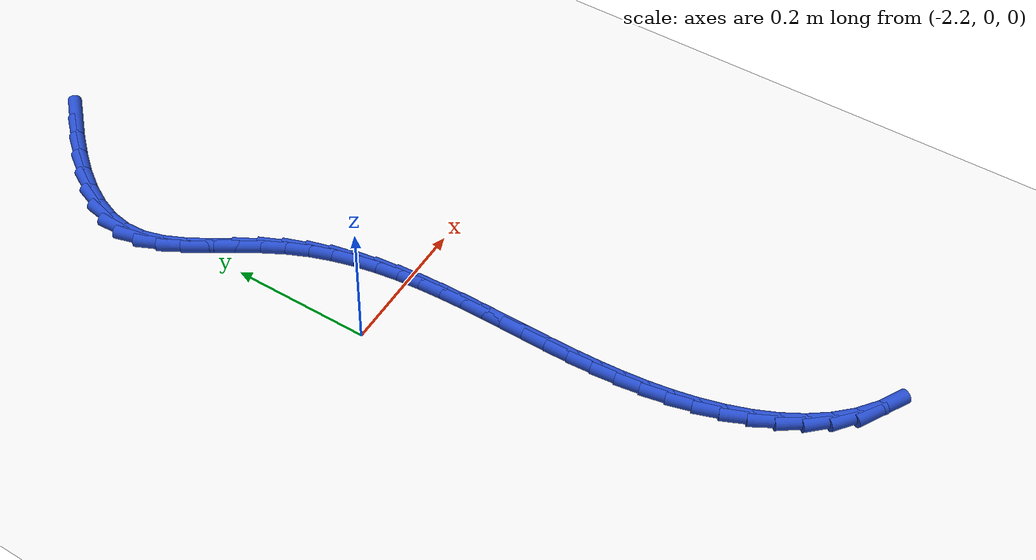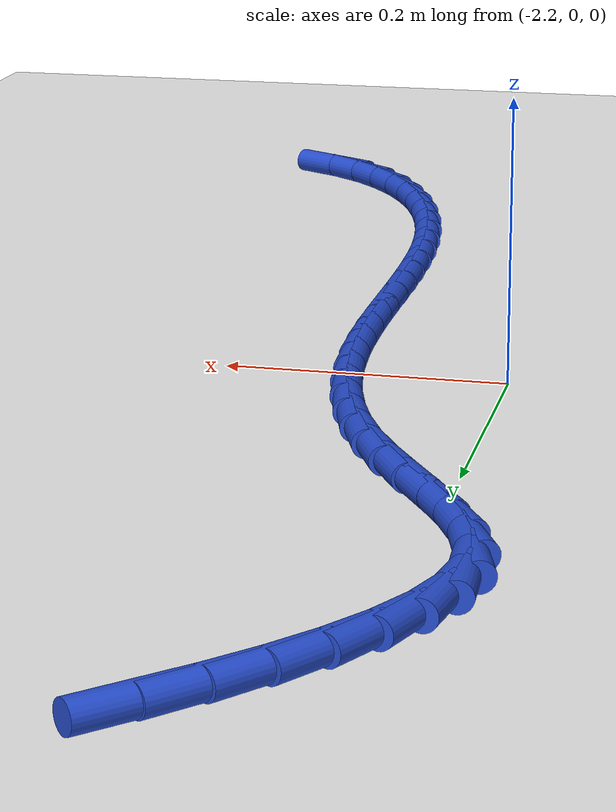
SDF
<sdf version="1.6">
 <world name="default">
  <model name="ground_plane">
   <static>1</static>
   <link name="link">
    <collision name="collision">
     <geometry><plane><normal>0 0 1</normal><size>100 100</size></plane></geometry>
     <surface><friction><ode><mu>100</mu><mu2>50</mu2></ode></friction></surface>
    </collision>
    <visual name="visual">
     <cast_shadows>0</cast_shadows>
     <geometry><plane><normal>0 0 1</normal><size>100 100</size></plane></geometry>
     <material>
      <script><uri>file://media/materials/scripts/gazebo.material</uri><name>Gazebo/WhiteGlow</name></script>
     </material>
    </visual>
   </link>
  </model>
  <model name="line">
   <link name="link_101">
    <pose>-2.10412547914269 0.5753928856501577 0.01 0 1.57 0.7786697946450344</pose>
    <collision name="collision">
     <geometry><cylinder><radius>0.01</radius><length>0.08</length></cylinder></geometry>
    </collision>
    <visual name="visual">
     <material>
      <script><name>Gazebo/Blue</name><uri>file://media/materials/scripts/gazebo.material</uri></script>
     </material>
     <geometry><cylinder><radius>0.01</radius><length>0.08</length></cylinder></geometry>
    </visual>
   </link>
   <link name="link_102">
    <pose>-2.1310854671356485 0.5487932718464961 0.01 0 1.57 0.8250641519956913</pose>
    <collision name="collision">
     <geometry><cylinder><radius>0.01</radius><length>0.08</length></cylinder></geometry>
    </collision>
    <visual name="visual">
     <material>
      <script><name>Gazebo/Blue</name><uri>file://media/materials/scripts/gazebo.material</uri></script>
     </material>
     <geometry><cylinder><radius>0.01</radius><length>0.08</length></cylinder></geometry>
    </visual>
   </link>
   <link name="link_103">
    <pose>-2.156544231815804 0.5212302415238946 0.01 0 1.57 0.886983211156099</pose>
    <collision name="collision">
     <geometry><cylinder><radius>0.01</radius><length>0.08</length></cylinder></geometry>
    </collision>
    <visual name="visual">
     <material>
      <script><name>Gazebo/Blue</name><uri>file://media/materials/scripts/gazebo.material</uri></script>
     </material>
     <geometry><cylinder><radius>0.01</radius><length>0.08</length></cylinder></geometry>
    </visual>
   </link>
   <link name="link_104">
    <pose>-2.179644463284014 0.49288596628811304 0.01 0 1.57 0.9688413552433839</pose>
    <collision name="collision">
     <geometry><cylinder><radius>0.01</radius><length>0.08</length></cylinder></geometry>
    </collision>
    <visual name="visual">
     <material>
      <script><name>Gazebo/Blue</name><uri>file://media/materials/scripts/gazebo.material</uri></script>
     </material>
     <geometry><cylinder><radius>0.01</radius><length>0.08</length></cylinder></geometry>
    </visual>
   </link>
   <link name="link_105">
    <pose>-2.1995288516411353 0.46394261774491213 0.01 0 1.57 1.076805588101793</pose>
    <collision name="collision">
     <geometry><cylinder><radius>0.01</radius><length>0.08</length></cylinder></geometry>
    </collision>
    <visual name="visual">
     <material>
      <script><name>Gazebo/Blue</name><uri>file://media/materials/scripts/gazebo.material</uri></script>
     </material>
     <geometry><cylinder><radius>0.01</radius><length>0.08</length></cylinder></geometry>
    </visual>
   </link>
   <link name="link_106">
    <pose>-2.215340086988025 0.4345823675000517 0.01 0 1.57 1.218479715315837</pose>
    <collision name="collision">
     <geometry><cylinder><radius>0.01</radius><length>0.08</length></cylinder></geometry>
    </collision>
    <visual name="visual">
     <material>
      <script><name>Gazebo/Blue</name><uri>file://media/materials/scripts/gazebo.material</uri></script>
     </material>
     <geometry><cylinder><radius>0.01</radius><length>0.08</length></cylinder></geometry>
    </visual>
   </link>
   <link name="link_107">
    <pose>-2.2262208594255415 0.40498738715929194 0.01 0 1.57 1.400671913106153</pose>
    <collision name="collision">
     <geometry><cylinder><radius>0.01</radius><length>0.08</length></cylinder></geometry>
    </collision>
    <visual name="visual">
     <material>
      <script><name>Gazebo/Blue</name><uri>file://media/materials/scripts/gazebo.material</uri></script>
     </material>
     <geometry><cylinder><radius>0.01</radius><length>0.08</length></cylinder></geometry>
    </visual>
   </link>
   <link name="link_108">
    <pose>-2.2313138590545423 0.37533984832839234 0.01 0 1.57 -1.5183265659076493</pose>
    <collision name="collision">
     <geometry><cylinder><radius>0.01</radius><length>0.08</length></cylinder></geometry>
    </collision>
    <visual name="visual">
     <material>
      <script><name>Gazebo/Blue</name><uri>file://media/materials/scripts/gazebo.material</uri></script>
     </material>
     <geometry><cylinder><radius>0.01</radius><length>0.08</length></cylinder></geometry>
    </visual>
   </link>
   <link name="link_109">
    <pose>-2.2297636259255986 0.34582169910995225 0.01 0 1.57 -1.2927290030072447</pose>
    <collision name="collision">
     <geometry><cylinder><radius>0.01</radius><length>0.08</length></cylinder></geometry>
    </collision>
    <visual name="visual">
     <material>
      <script><name>Gazebo/Blue</name><uri>file://media/materials/scripts/gazebo.material</uri></script>
     </material>
     <geometry><cylinder><radius>0.01</radius><length>0.08</length></cylinder></geometry>
    </visual>
   </link>
   <link name="link_110">
    <pose>-2.2214024426924146 0.3165317974311543 0.01 0 1.57 -1.1337945353046834</pose>
    <collision name="collision">
     <geometry><cylinder><radius>0.01</radius><length>0.08</length></cylinder></geometry>
    </collision>
    <visual name="visual">
     <material>
      <script><name>Gazebo/Blue</name><uri>file://media/materials/scripts/gazebo.material</uri></script>
     </material>
     <geometry><cylinder><radius>0.01</radius><length>0.08</length></cylinder></geometry>
    </visual>
   </link>
   <link name="link_111">
    <pose>-2.2077765280489423 0.2873619306587911 0.01 0 1.57 -1.0413294779980578</pose>
    <collision name="collision">
     <geometry><cylinder><radius>0.01</radius><length>0.08</length></cylinder></geometry>
    </collision>
    <visual name="visual">
     <material>
      <script><name>Gazebo/Blue</name><uri>file://media/materials/scripts/gazebo.material</uri></script>
     </material>
     <geometry><cylinder><radius>0.01</radius><length>0.08</length></cylinder></geometry>
    </visual>
   </link>
   <link name="link_112">
    <pose>-2.1906946472087867 0.2581721663908442 0.01 0 1.57 -1.0028054246861635</pose>
    <collision name="collision">
     <geometry><cylinder><radius>0.01</radius><length>0.08</length></cylinder></geometry>
    </collision>
    <visual name="visual">
     <material>
      <script><name>Gazebo/Blue</name><uri>file://media/materials/scripts/gazebo.material</uri></script>
     </material>
     <geometry><cylinder><radius>0.01</radius><length>0.08</length></cylinder></geometry>
    </visual>
   </link>
   <link name="link_113">
    <pose>-2.1719655653855576 0.2288225722252961 0.01 0 1.57 -1.011308134167758</pose>
    <collision name="collision">
     <geometry><cylinder><radius>0.01</radius><length>0.08</length></cylinder></geometry>
    </collision>
    <visual name="visual">
     <material>
      <script><name>Gazebo/Blue</name><uri>file://media/materials/scripts/gazebo.material</uri></script>
     </material>
     <geometry><cylinder><radius>0.01</radius><length>0.08</length></cylinder></geometry>
    </visual>
   </link>
   <link name="link_114">
    <pose>-2.15339804779286 0.19917321576012798 0.01 0 1.57 -1.0661579048571146</pose>
    <collision name="collision">
     <geometry><cylinder><radius>0.01</radius><length>0.08</length></cylinder></geometry>
    </collision>
    <visual name="visual">
     <material>
      <script><name>Gazebo/Blue</name><uri>file://media/materials/scripts/gazebo.material</uri></script>
     </material>
     <geometry><cylinder><radius>0.01</radius><length>0.08</length></cylinder></geometry>
    </visual>
   </link>
   <link name="link_115">
    <pose>-2.136779639704321 0.16908596739409007 0.01 0 1.57 -1.148635688948124</pose>
    <collision name="collision">
     <geometry><cylinder><radius>0.01</radius><length>0.08</length></cylinder></geometry>
    </collision>
    <visual name="visual">
     <material>
      <script><name>Gazebo/Blue</name><uri>file://media/materials/scripts/gazebo.material</uri></script>
     </material>
     <geometry><cylinder><radius>0.01</radius><length>0.08</length></cylinder></geometry>
    </visual>
   </link>
   <link name="link_116">
    <pose>-2.123039480589786 0.13849562584920957 0.01 0 1.57 -1.2285153471247006</pose>
    <collision name="collision">
     <geometry><cylinder><radius>0.01</radius><length>0.08</length></cylinder></geometry>
    </collision>
    <visual name="visual">
     <material>
      <script><name>Gazebo/Blue</name><uri>file://media/materials/scripts/gazebo.material</uri></script>
     </material>
     <geometry><cylinder><radius>0.01</radius><length>0.08</length></cylinder></geometry>
    </visual>
   </link>
   <link name="link_117">
    <pose>-2.1119718452115697 0.10743340552865308 0.01 0 1.57 -1.3019216262980031</pose>
    <collision name="collision">
     <geometry><cylinder><radius>0.01</radius><length>0.08</length></cylinder></geometry>
    </collision>
    <visual name="visual">
     <material>
      <script><name>Gazebo/Blue</name><uri>file://media/materials/scripts/gazebo.material</uri></script>
     </material>
     <geometry><cylinder><radius>0.01</radius><length>0.08</length></cylinder></geometry>
    </visual>
   </link>
   <link name="link_118">
    <pose>-2.1032931420335172 0.0759371361899593 0.01 0 1.57 -1.367532678526007</pose>
    <collision name="collision">
     <geometry><cylinder><radius>0.01</radius><length>0.08</length></cylinder></geometry>
    </collision>
    <visual name="visual">
     <material>
      <script><name>Gazebo/Blue</name><uri>file://media/materials/scripts/gazebo.material</uri></script>
     </material>
     <geometry><cylinder><radius>0.01</radius><length>0.08</length></cylinder></geometry>
    </visual>
   </link>
   <link name="link_119">
    <pose>-2.096719779519474 0.04404464759066666 0.01 0 1.57 -1.4245158660570103</pose>
    <collision name="collision">
     <geometry><cylinder><radius>0.01</radius><length>0.08</length></cylinder></geometry>
    </collision>
    <visual name="visual">
     <material>
      <script><name>Gazebo/Blue</name><uri>file://media/materials/scripts/gazebo.material</uri></script>
     </material>
     <geometry><cylinder><radius>0.01</radius><length>0.08</length></cylinder></geometry>
    </visual>
   </link>
   <link name="link_120">
    <pose>-2.091968166133285 0.011793769488314731 0.01 0 1.57 -1.4724558673010029</pose>
    <collision name="collision">
     <geometry><cylinder><radius>0.01</radius><length>0.08</length></cylinder></geometry>
    </collision>
    <visual name="visual">
     <material>
      <script><name>Gazebo/Blue</name><uri>file://media/materials/scripts/gazebo.material</uri></script>
     </material>
     <geometry><cylinder><radius>0.01</radius><length>0.08</length></cylinder></geometry>
    </visual>
   </link>
   <link name="link_121">
    <pose>-2.0887547103387964 -0.020777668359558125 0.01 0 1.57 -1.5112430486189006</pose>
    <collision name="collision">
     <geometry><cylinder><radius>0.01</radius><length>0.08</length></cylinder></geometry>
    </collision>
    <visual name="visual">
     <material>
      <script><name>Gazebo/Blue</name><uri>file://media/materials/scripts/gazebo.material</uri></script>
     </material>
     <geometry><cylinder><radius>0.01</radius><length>0.08</length></cylinder></geometry>
    </visual>
   </link>
   <link name="link_122">
    <pose>-2.086795820599856 -0.053631836195413146 0.01 0 1.57 -1.5409579636522355</pose>
    <collision name="collision">
     <geometry><cylinder><radius>0.01</radius><length>0.08</length></cylinder></geometry>
    </collision>
    <visual name="visual">
     <material>
      <script><name>Gazebo/Blue</name><uri>file://media/materials/scripts/gazebo.material</uri></script>
     </material>
     <geometry><cylinder><radius>0.01</radius><length>0.08</length></cylinder></geometry>
    </visual>
   </link>
   <link name="link_123">
    <pose>-2.085807905380307 -0.08673090426171158 0.01 0 1.57 -1.5617732429610947</pose>
    <collision name="collision">
     <geometry><cylinder><radius>0.01</radius><length>0.08</length></cylinder></geometry>
    </collision>
    <visual name="visual">
     <material>
      <script><name>Gazebo/Blue</name><uri>file://media/materials/scripts/gazebo.material</uri></script>
     </material>
     <geometry><cylinder><radius>0.01</radius><length>0.08</length></cylinder></geometry>
    </visual>
   </link>
   <link name="link_124">
    <pose>-2.085507373143995 -0.1200370428009146 0.01 0 1.57 1.5677117050349139</pose>
    <collision name="collision">
     <geometry><cylinder><radius>0.01</radius><length>0.08</length></cylinder></geometry>
    </collision>
    <visual name="visual">
     <material>
      <script><name>Gazebo/Blue</name><uri>file://media/materials/scripts/gazebo.material</uri></script>
     </material>
     <geometry><cylinder><radius>0.01</radius><length>0.08</length></cylinder></geometry>
    </visual>
   </link>
   <link name="link_125">
    <pose>-2.0856106323547676 -0.15351242205548438 0.01 0 1.57 1.56414719942598</pose>
    <collision name="collision">
     <geometry><cylinder><radius>0.01</radius><length>0.08</length></cylinder></geometry>
    </collision>
    <visual name="visual">
     <material>
      <script><name>Gazebo/Blue</name><uri>file://media/materials/scripts/gazebo.material</uri></script>
     </material>
     <geometry><cylinder><radius>0.01</radius><length>0.08</length></cylinder></geometry>
    </visual>
   </link>
   <link name="link_126">
    <pose>-2.0858340914764693 -0.1871192122678803 0.01 0 1.57 1.5690139300334063</pose>
    <collision name="collision">
     <geometry><cylinder><radius>0.01</radius><length>0.08</length></cylinder></geometry>
    </collision>
    <visual name="visual">
     <material>
      <script><name>Gazebo/Blue</name><uri>file://media/materials/scripts/gazebo.material</uri></script>
     </material>
     <geometry><cylinder><radius>0.01</radius><length>0.08</length></cylinder></geometry>
    </visual>
   </link>
   <link name="link_127">
    <pose>-2.0858941589729465 -0.22081958368056462 0.01 0 1.57 -1.5593347402958797</pose>
    <collision name="collision">
     <geometry><cylinder><radius>0.01</radius><length>0.08</length></cylinder></geometry>
    </collision>
    <visual name="visual">
     <material>
      <script><name>Gazebo/Blue</name><uri>file://media/materials/scripts/gazebo.material</uri></script>
     </material>
     <geometry><cylinder><radius>0.01</radius><length>0.08</length></cylinder></geometry>
    </visual>
   </link>
   <link name="link_128">
    <pose>-2.0855072433080446 -0.25457570653599837 0.01 0 1.57 -1.5377211399658823</pose>
    <collision name="collision">
     <geometry><cylinder><radius>0.01</radius><length>0.08</length></cylinder></geometry>
    </collision>
    <visual name="visual">
     <material>
      <script><name>Gazebo/Blue</name><uri>file://media/materials/scripts/gazebo.material</uri></script>
     </material>
     <geometry><cylinder><radius>0.01</radius><length>0.08</length></cylinder></geometry>
    </visual>
   </link>
   <link name="link_129">
    <pose>-2.0843897529456092 -0.28834975107664296 0.01 0 1.57 -1.5077276266776747</pose>
    <collision name="collision">
     <geometry><cylinder><radius>0.01</radius><length>0.08</length></cylinder></geometry>
    </collision>
    <visual name="visual">
     <material>
      <script><name>Gazebo/Blue</name><uri>file://media/materials/scripts/gazebo.material</uri></script>
     </material>
     <geometry><cylinder><radius>0.01</radius><length>0.08</length></cylinder></geometry>
    </visual>
   </link>
   <link name="link_130">
    <pose>-2.082258096349486 -0.32210388754495956 0.01 0 1.57 -1.4693716343644683</pose>
    <collision name="collision">
     <geometry><cylinder><radius>0.01</radius><length>0.08</length></cylinder></geometry>
    </collision>
    <visual name="visual">
     <material>
      <script><name>Gazebo/Blue</name><uri>file://media/materials/scripts/gazebo.material</uri></script>
     </material>
     <geometry><cylinder><radius>0.01</radius><length>0.08</length></cylinder></geometry>
    </visual>
   </link>
   <link name="link_131">
    <pose>-2.0788286819835213 -0.35580028618340936 0.01 0 1.57 -1.422761077534603</pose>
    <collision name="collision">
     <geometry><cylinder><radius>0.01</radius><length>0.08</length></cylinder></geometry>
    </collision>
    <visual name="visual">
     <material>
      <script><name>Gazebo/Blue</name><uri>file://media/materials/scripts/gazebo.material</uri></script>
     </material>
     <geometry><cylinder><radius>0.01</radius><length>0.08</length></cylinder></geometry>
    </visual>
   </link>
   <link name="link_132">
    <pose>-2.073817918311561 -0.3894011172344546 0.01 0 1.57 -1.3681710389860595</pose>
    <collision name="collision">
     <geometry><cylinder><radius>0.01</radius><length>0.08</length></cylinder></geometry>
    </collision>
    <visual name="visual">
     <material>
      <script><name>Gazebo/Blue</name><uri>file://media/materials/scripts/gazebo.material</uri></script>
     </material>
     <geometry><cylinder><radius>0.01</radius><length>0.08</length></cylinder></geometry>
    </visual>
   </link>
   <link name="link_133">
    <pose>-2.0669422150579977 -0.42286853956712056 0.01 0 1.57 -1.3056894460051762</pose>
    <collision name="collision">
     <geometry><cylinder><radius>0.01</radius><length>0.08</length></cylinder></geometry>
    </collision>
    <visual name="visual">
     <material>
      <script><name>Gazebo/Blue</name><uri>file://media/materials/scripts/gazebo.material</uri></script>
     </material>
     <geometry><cylinder><radius>0.01</radius><length>0.08</length></cylinder></geometry>
    </visual>
   </link>
   <link name="link_134">
    <pose>-2.057928735254343 -0.4560676891220595 0.01 0 1.57 -1.2334337976340757</pose>
    <collision name="collision">
     <geometry><cylinder><radius>0.01</radius><length>0.08</length></cylinder></geometry>
    </collision>
    <visual name="visual">
     <material>
      <script><name>Gazebo/Blue</name><uri>file://media/materials/scripts/gazebo.material</uri></script>
     </material>
     <geometry><cylinder><radius>0.01</radius><length>0.08</length></cylinder></geometry>
    </visual>
   </link>
   <link name="link_135">
    <pose>-2.0465415188962233 -0.488530975264895 0.01 0 1.57 -1.1491653338649714</pose>
    <collision name="collision">
     <geometry><cylinder><radius>0.01</radius><length>0.08</length></cylinder></geometry>
    </collision>
    <visual name="visual">
     <material>
      <script><name>Gazebo/Blue</name><uri>file://media/materials/scripts/gazebo.material</uri></script>
     </material>
     <geometry><cylinder><radius>0.01</radius><length>0.08</length></cylinder></geometry>
    </visual>
   </link>
   <link name="link_136">
    <pose>-2.032552504720995 -0.5197195400715559 0.01 0 1.57 -1.0507994605887336</pose>
    <collision name="collision">
     <geometry><cylinder><radius>0.01</radius><length>0.08</length></cylinder></geometry>
    </collision>
    <visual name="visual">
     <material>
      <script><name>Gazebo/Blue</name><uri>file://media/materials/scripts/gazebo.material</uri></script>
     </material>
     <geometry><cylinder><radius>0.01</radius><length>0.08</length></cylinder></geometry>
    </visual>
   </link>
   <link name="link_137">
    <pose>-2.01573363146602 -0.549094525617972 0.01 0 1.57 -0.9365989404534346</pose>
    <collision name="collision">
     <geometry><cylinder><radius>0.01</radius><length>0.08</length></cylinder></geometry>
    </collision>
    <visual name="visual">
     <material>
      <script><name>Gazebo/Blue</name><uri>file://media/materials/scripts/gazebo.material</uri></script>
     </material>
     <geometry><cylinder><radius>0.01</radius><length>0.08</length></cylinder></geometry>
    </visual>
   </link>
   <link name="link_138">
    <pose>-1.9958568378686554 -0.5761170739800732 0.01 0 1.57 -0.8058731100855584</pose>
    <collision name="collision">
     <geometry><cylinder><radius>0.01</radius><length>0.08</length></cylinder></geometry>
    </collision>
    <visual name="visual">
     <material>
      <script><name>Gazebo/Blue</name><uri>file://media/materials/scripts/gazebo.material</uri></script>
     </material>
     <geometry><cylinder><radius>0.01</radius><length>0.08</length></cylinder></geometry>
    </visual>
   </link>
   <link name="link_139">
    <pose>-1.9726940626662612 -0.6002483272337887 0.01 0 1.57 -0.6599319341417514</pose>
    <collision name="collision">
     <geometry><cylinder><radius>0.01</radius><length>0.08</length></cylinder></geometry>
    </collision>
    <visual name="visual">
     <material>
      <script><name>Gazebo/Blue</name><uri>file://media/materials/scripts/gazebo.material</uri></script>
     </material>
     <geometry><cylinder><radius>0.01</radius><length>0.08</length></cylinder></geometry>
    </visual>
   </link>
   <link name="link_140">
    <pose>-1.9460172445961954 -0.6209494274550486 0.01 0 1.57 -0.5088594678215728</pose>
    <collision name="collision">
     <geometry><cylinder><radius>0.01</radius><length>0.08</length></cylinder></geometry>
    </collision>
    <visual name="visual">
     <material>
      <script><name>Gazebo/Blue</name><uri>file://media/materials/scripts/gazebo.material</uri></script>
     </material>
     <geometry><cylinder><radius>0.01</radius><length>0.08</length></cylinder></geometry>
    </visual>
   </link>
  </model>
 </world>
</sdf>
